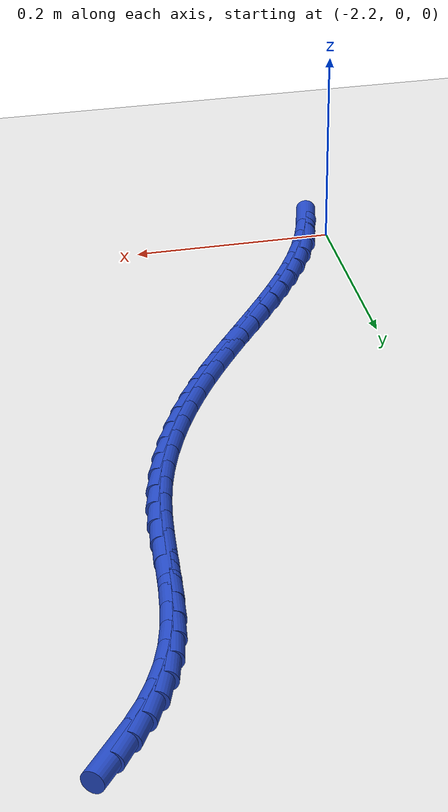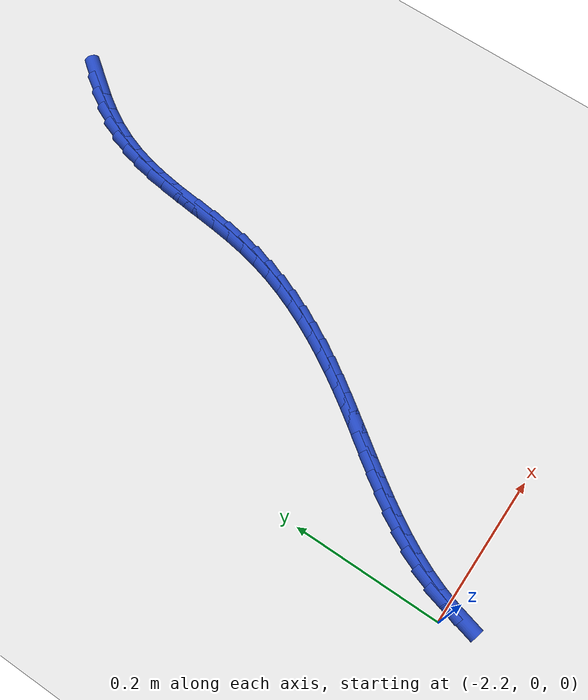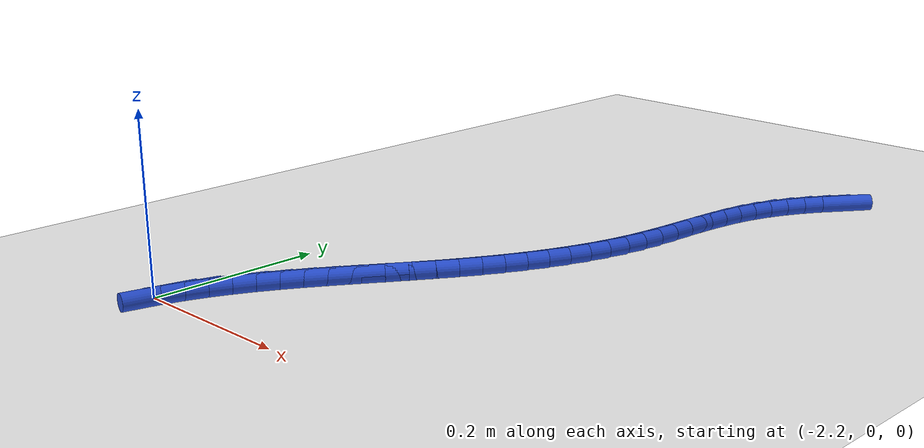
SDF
<sdf version="1.6">
 <world name="default">
  <model name="ground_plane">
   <static>1</static>
   <link name="link">
    <collision name="collision">
     <geometry><plane><normal>0 0 1</normal><size>100 100</size></plane></geometry>
     <surface><friction><ode><mu>100</mu><mu2>50</mu2></ode></friction></surface>
    </collision>
    <visual name="visual">
     <cast_shadows>0</cast_shadows>
     <geometry><plane><normal>0 0 1</normal><size>100 100</size></plane></geometry>
     <material>
      <script><uri>file://media/materials/scripts/gazebo.material</uri><name>Gazebo/WhiteGlow</name></script>
     </material>
    </visual>
   </link>
  </model>
  <model name="line">
   <link name="link_103">
    <pose>-1.8512747214582679 0.7609106441672935 0.01 0 1.57 0.9231287631363116</pose>
    <collision name="collision">
     <geometry><cylinder><radius>0.01</radius><length>0.08</length></cylinder></geometry>
    </collision>
    <visual name="visual">
     <material>
      <script><name>Gazebo/Blue</name><uri>file://media/materials/scripts/gazebo.material</uri></script>
     </material>
     <geometry><cylinder><radius>0.01</radius><length>0.08</length></cylinder></geometry>
    </visual>
   </link>
   <link name="link_104">
    <pose>-1.866297102078203 0.7410537051323601 0.01 0 1.57 0.9896168499917883</pose>
    <collision name="collision">
     <geometry><cylinder><radius>0.01</radius><length>0.08</length></cylinder></geometry>
    </collision>
    <visual name="visual">
     <material>
      <script><name>Gazebo/Blue</name><uri>file://media/materials/scripts/gazebo.material</uri></script>
     </material>
     <geometry><cylinder><radius>0.01</radius><length>0.08</length></cylinder></geometry>
    </visual>
   </link>
   <link name="link_105">
    <pose>-1.8798119530711372 0.7204786308938053 0.01 0 1.57 1.063046757856706</pose>
    <collision name="collision">
     <geometry><cylinder><radius>0.01</radius><length>0.08</length></cylinder></geometry>
    </collision>
    <visual name="visual">
     <material>
      <script><name>Gazebo/Blue</name><uri>file://media/materials/scripts/gazebo.material</uri></script>
     </material>
     <geometry><cylinder><radius>0.01</radius><length>0.08</length></cylinder></geometry>
    </visual>
   </link>
   <link name="link_106">
    <pose>-1.8916685426839133 0.6991694615609368 0.01 0 1.57 1.1433922961756122</pose>
    <collision name="collision">
     <geometry><cylinder><radius>0.01</radius><length>0.08</length></cylinder></geometry>
    </collision>
    <visual name="visual">
     <material>
      <script><name>Gazebo/Blue</name><uri>file://media/materials/scripts/gazebo.material</uri></script>
     </material>
     <geometry><cylinder><radius>0.01</radius><length>0.08</length></cylinder></geometry>
    </visual>
   </link>
   <link name="link_107">
    <pose>-1.9017161391633732 0.6771102372430629 0.01 0 1.57 1.2302144039760476</pose>
    <collision name="collision">
     <geometry><cylinder><radius>0.01</radius><length>0.08</length></cylinder></geometry>
    </collision>
    <visual name="visual">
     <material>
      <script><name>Gazebo/Blue</name><uri>file://media/materials/scripts/gazebo.material</uri></script>
     </material>
     <geometry><cylinder><radius>0.01</radius><length>0.08</length></cylinder></geometry>
    </visual>
   </link>
   <link name="link_108">
    <pose>-1.9098051081567966 0.6542853014010667 0.01 0 1.57 1.3153860328562064</pose>
    <collision name="collision">
     <geometry><cylinder><radius>0.01</radius><length>0.08</length></cylinder></geometry>
    </collision>
    <visual name="visual">
     <material>
      <script><name>Gazebo/Blue</name><uri>file://media/materials/scripts/gazebo.material</uri></script>
     </material>
     <geometry><cylinder><radius>0.01</radius><length>0.08</length></cylinder></geometry>
    </visual>
   </link>
   <link name="link_109">
    <pose>-1.9159566874657317 0.6307262312451731 0.01 0 1.57 1.3830758496814977</pose>
    <collision name="collision">
     <geometry><cylinder><radius>0.01</radius><length>0.08</length></cylinder></geometry>
    </collision>
    <visual name="visual">
     <material>
      <script><name>Gazebo/Blue</name><uri>file://media/materials/scripts/gazebo.material</uri></script>
     </material>
     <geometry><cylinder><radius>0.01</radius><length>0.08</length></cylinder></geometry>
    </visual>
   </link>
   <link name="link_110">
    <pose>-1.9205467334340895 0.6065626302755767 0.01 0 1.57 1.4316688224334688</pose>
    <collision name="collision">
     <geometry><cylinder><radius>0.01</radius><length>0.08</length></cylinder></geometry>
    </collision>
    <visual name="visual">
     <material>
      <script><name>Gazebo/Blue</name><uri>file://media/materials/scripts/gazebo.material</uri></script>
     </material>
     <geometry><cylinder><radius>0.01</radius><length>0.08</length></cylinder></geometry>
    </visual>
   </link>
   <link name="link_111">
    <pose>-1.923995212843081 0.581936295327 0.01 0 1.57 1.4619228276543006</pose>
    <collision name="collision">
     <geometry><cylinder><radius>0.01</radius><length>0.08</length></cylinder></geometry>
    </collision>
    <visual name="visual">
     <material>
      <script><name>Gazebo/Blue</name><uri>file://media/materials/scripts/gazebo.material</uri></script>
     </material>
     <geometry><cylinder><radius>0.01</radius><length>0.08</length></cylinder></geometry>
    </visual>
   </link>
   <link name="link_112">
    <pose>-1.9267220924739175 0.5569890232341667 0.01 0 1.57 1.4745726062059854</pose>
    <collision name="collision">
     <geometry><cylinder><radius>0.01</radius><length>0.08</length></cylinder></geometry>
    </collision>
    <visual name="visual">
     <material>
      <script><name>Gazebo/Blue</name><uri>file://media/materials/scripts/gazebo.material</uri></script>
     </material>
     <geometry><cylinder><radius>0.01</radius><length>0.08</length></cylinder></geometry>
    </visual>
   </link>
   <link name="link_113">
    <pose>-1.9291473391078098 0.5318626108317993 0.01 0 1.57 1.4700573816714517</pose>
    <collision name="collision">
     <geometry><cylinder><radius>0.01</radius><length>0.08</length></cylinder></geometry>
    </collision>
    <visual name="visual">
     <material>
      <script><name>Gazebo/Blue</name><uri>file://media/materials/scripts/gazebo.material</uri></script>
     </material>
     <geometry><cylinder><radius>0.01</radius><length>0.08</length></cylinder></geometry>
    </visual>
   </link>
   <link name="link_114">
    <pose>-1.9316909195259695 0.5066988549546219 0.01 0 1.57 1.4484272895212211</pose>
    <collision name="collision">
     <geometry><cylinder><radius>0.01</radius><length>0.08</length></cylinder></geometry>
    </collision>
    <visual name="visual">
     <material>
      <script><name>Gazebo/Blue</name><uri>file://media/materials/scripts/gazebo.material</uri></script>
     </material>
     <geometry><cylinder><radius>0.01</radius><length>0.08</length></cylinder></geometry>
    </visual>
   </link>
   <link name="link_115">
    <pose>-1.9347728005096076 0.4816395524373576 0.01 0 1.57 1.409389249067933</pose>
    <collision name="collision">
     <geometry><cylinder><radius>0.01</radius><length>0.08</length></cylinder></geometry>
    </collision>
    <visual name="visual">
     <material>
      <script><name>Gazebo/Blue</name><uri>file://media/materials/scripts/gazebo.material</uri></script>
     </material>
     <geometry><cylinder><radius>0.01</radius><length>0.08</length></cylinder></geometry>
    </visual>
   </link>
   <link name="link_116">
    <pose>-1.938812948839935 0.4568265001147294 0.01 0 1.57 1.3544810641204197</pose>
    <collision name="collision">
     <geometry><cylinder><radius>0.01</radius><length>0.08</length></cylinder></geometry>
    </collision>
    <visual name="visual">
     <material>
      <script><name>Gazebo/Blue</name><uri>file://media/materials/scripts/gazebo.material</uri></script>
     </material>
     <geometry><cylinder><radius>0.01</radius><length>0.08</length></cylinder></geometry>
    </visual>
   </link>
   <link name="link_117">
    <pose>-1.944183409196906 0.43238794486866244 0.01 0 1.57 1.2972614360186911</pose>
    <collision name="collision">
     <geometry><cylinder><radius>0.01</radius><length>0.08</length></cylinder></geometry>
    </collision>
    <visual name="visual">
     <material>
      <script><name>Gazebo/Blue</name><uri>file://media/materials/scripts/gazebo.material</uri></script>
     </material>
     <geometry><cylinder><radius>0.01</radius><length>0.08</length></cylinder></geometry>
    </visual>
   </link>
   <link name="link_118">
    <pose>-1.9509252749934902 0.40835855725766773 0.01 0 1.57 1.2437357232451371</pose>
    <collision name="collision">
     <geometry><cylinder><radius>0.01</radius><length>0.08</length></cylinder></geometry>
    </collision>
    <visual name="visual">
     <material>
      <script><name>Gazebo/Blue</name><uri>file://media/materials/scripts/gazebo.material</uri></script>
     </material>
     <geometry><cylinder><radius>0.01</radius><length>0.08</length></cylinder></geometry>
    </visual>
   </link>
   <link name="link_119">
    <pose>-1.9589399299855823 0.3847335049969088 0.01 0 1.57 1.1940794362898297</pose>
    <collision name="collision">
     <geometry><cylinder><radius>0.01</radius><length>0.08</length></cylinder></geometry>
    </collision>
    <visual name="visual">
     <material>
      <script><name>Gazebo/Blue</name><uri>file://media/materials/scripts/gazebo.material</uri></script>
     </material>
     <geometry><cylinder><radius>0.01</radius><length>0.08</length></cylinder></geometry>
    </visual>
   </link>
   <link name="link_120">
    <pose>-1.9681282639772943 0.3615078161369036 0.01 0 1.57 1.1483497303270647</pose>
    <collision name="collision">
     <geometry><cylinder><radius>0.01</radius><length>0.08</length></cylinder></geometry>
    </collision>
    <visual name="visual">
     <material>
      <script><name>Gazebo/Blue</name><uri>file://media/materials/scripts/gazebo.material</uri></script>
     </material>
     <geometry><cylinder><radius>0.01</radius><length>0.08</length></cylinder></geometry>
    </visual>
   </link>
   <link name="link_121">
    <pose>-1.9783911667727374 0.33867651872816945 0.01 0 1.57 1.1065278414466153</pose>
    <collision name="collision">
     <geometry><cylinder><radius>0.01</radius><length>0.08</length></cylinder></geometry>
    </collision>
    <visual name="visual">
     <material>
      <script><name>Gazebo/Blue</name><uri>file://media/materials/scripts/gazebo.material</uri></script>
     </material>
     <geometry><cylinder><radius>0.01</radius><length>0.08</length></cylinder></geometry>
    </visual>
   </link>
   <link name="link_122">
    <pose>-1.9896295281760241 0.3162346408212238 0.01 0 1.57 1.0685407402354372</pose>
    <collision name="collision">
     <geometry><cylinder><radius>0.01</radius><length>0.08</length></cylinder></geometry>
    </collision>
    <visual name="visual">
     <material>
      <script><name>Gazebo/Blue</name><uri>file://media/materials/scripts/gazebo.material</uri></script>
     </material>
     <geometry><cylinder><radius>0.01</radius><length>0.08</length></cylinder></geometry>
    </visual>
   </link>
   <link name="link_123">
    <pose>-2.0017442379912653 0.2941772104665849 0.01 0 1.57 1.0342806702012348</pose>
    <collision name="collision">
     <geometry><cylinder><radius>0.01</radius><length>0.08</length></cylinder></geometry>
    </collision>
    <visual name="visual">
     <material>
      <script><name>Gazebo/Blue</name><uri>file://media/materials/scripts/gazebo.material</uri></script>
     </material>
     <geometry><cylinder><radius>0.01</radius><length>0.08</length></cylinder></geometry>
    </visual>
   </link>
   <link name="link_124">
    <pose>-2.014636186022574 0.2724992557147701 0.01 0 1.57 1.0037899937255792</pose>
    <collision name="collision">
     <geometry><cylinder><radius>0.01</radius><length>0.08</length></cylinder></geometry>
    </collision>
    <visual name="visual">
     <material>
      <script><name>Gazebo/Blue</name><uri>file://media/materials/scripts/gazebo.material</uri></script>
     </material>
     <geometry><cylinder><radius>0.01</radius><length>0.08</length></cylinder></geometry>
    </visual>
   </link>
   <link name="link_125">
    <pose>-2.0282032071816283 0.25119268898185865 0.01 0 1.57 0.979501184121403</pose>
    <collision name="collision">
     <geometry><cylinder><radius>0.01</radius><length>0.08</length></cylinder></geometry>
    </collision>
    <visual name="visual">
     <material>
      <script><name>Gazebo/Blue</name><uri>file://media/materials/scripts/gazebo.material</uri></script>
     </material>
     <geometry><cylinder><radius>0.01</radius><length>0.08</length></cylinder></geometry>
    </visual>
   </link>
   <link name="link_126">
    <pose>-2.042296882173539 0.23020224878108103 0.01 0 1.57 0.9633193209608859</pose>
    <collision name="collision">
     <geometry><cylinder><radius>0.01</radius><length>0.08</length></cylinder></geometry>
    </collision>
    <visual name="visual">
     <material>
      <script><name>Gazebo/Blue</name><uri>file://media/materials/scripts/gazebo.material</uri></script>
     </material>
     <geometry><cylinder><radius>0.01</radius><length>0.08</length></cylinder></geometry>
    </visual>
   </link>
   <link name="link_127">
    <pose>-2.0567329048472383 0.20943607321259003 0.01 0 1.57 0.9552466254813333</pose>
    <collision name="collision">
     <geometry><cylinder><radius>0.01</radius><length>0.08</length></cylinder></geometry>
    </collision>
    <visual name="visual">
     <material>
      <script><name>Gazebo/Blue</name><uri>file://media/materials/scripts/gazebo.material</uri></script>
     </material>
     <geometry><cylinder><radius>0.01</radius><length>0.08</length></cylinder></geometry>
    </visual>
   </link>
   <link name="link_128">
    <pose>-2.0713260295816753 0.18880134222658712 0.01 0 1.57 0.9552734192095226</pose>
    <collision name="collision">
     <geometry><cylinder><radius>0.01</radius><length>0.08</length></cylinder></geometry>
    </collision>
    <visual name="visual">
     <material>
      <script><name>Gazebo/Blue</name><uri>file://media/materials/scripts/gazebo.material</uri></script>
     </material>
     <geometry><cylinder><radius>0.01</radius><length>0.08</length></cylinder></geometry>
    </visual>
   </link>
   <link name="link_129">
    <pose>-2.0858910107557995 0.16820523577327406 0.01 0 1.57 0.9634459679399631</pose>
    <collision name="collision">
     <geometry><cylinder><radius>0.01</radius><length>0.08</length></cylinder></geometry>
    </collision>
    <visual name="visual">
     <material>
      <script><name>Gazebo/Blue</name><uri>file://media/materials/scripts/gazebo.material</uri></script>
     </material>
     <geometry><cylinder><radius>0.01</radius><length>0.08</length></cylinder></geometry>
    </visual>
   </link>
   <link name="link_130">
    <pose>-2.100242602748558 0.14755493380285262 0.01 0 1.57 0.9798674554300055</pose>
    <collision name="collision">
     <geometry><cylinder><radius>0.01</radius><length>0.08</length></cylinder></geometry>
    </collision>
    <visual name="visual">
     <material>
      <script><name>Gazebo/Blue</name><uri>file://media/materials/scripts/gazebo.material</uri></script>
     </material>
     <geometry><cylinder><radius>0.01</radius><length>0.08</length></cylinder></geometry>
    </visual>
   </link>
   <link name="link_131">
    <pose>-2.1141955599389024 0.12675761626552431 0.01 0 1.57 1.0046832089921323</pose>
    <collision name="collision">
     <geometry><cylinder><radius>0.01</radius><length>0.08</length></cylinder></geometry>
    </collision>
    <visual name="visual">
     <material>
      <script><name>Gazebo/Blue</name><uri>file://media/materials/scripts/gazebo.material</uri></script>
     </material>
     <geometry><cylinder><radius>0.01</radius><length>0.08</length></cylinder></geometry>
    </visual>
   </link>
   <link name="link_132">
    <pose>-2.1275646367057788 0.10572046311149143 0.01 0 1.57 1.0380481680309248</pose>
    <collision name="collision">
     <geometry><cylinder><radius>0.01</radius><length>0.08</length></cylinder></geometry>
    </collision>
    <visual name="visual">
     <material>
      <script><name>Gazebo/Blue</name><uri>file://media/materials/scripts/gazebo.material</uri></script>
     </material>
     <geometry><cylinder><radius>0.01</radius><length>0.08</length></cylinder></geometry>
    </visual>
   </link>
   <link name="link_133">
    <pose>-2.140164587428137 0.08435065429095556 0.01 0 1.57 1.0800739108932407</pose>
    <collision name="collision">
     <geometry><cylinder><radius>0.01</radius><length>0.08</length></cylinder></geometry>
    </collision>
    <visual name="visual">
     <material>
      <script><name>Gazebo/Blue</name><uri>file://media/materials/scripts/gazebo.material</uri></script>
     </material>
     <geometry><cylinder><radius>0.01</radius><length>0.08</length></cylinder></geometry>
    </visual>
   </link>
   <link name="link_134">
    <pose>-2.151810166484927 0.06255536975411839 0.01 0 1.57 1.1307536750155072</pose>
    <collision name="collision">
     <geometry><cylinder><radius>0.01</radius><length>0.08</length></cylinder></geometry>
    </collision>
    <visual name="visual">
     <material>
      <script><name>Gazebo/Blue</name><uri>file://media/materials/scripts/gazebo.material</uri></script>
     </material>
     <geometry><cylinder><radius>0.01</radius><length>0.08</length></cylinder></geometry>
    </visual>
   </link>
   <link name="link_135">
    <pose>-2.162316128255096 0.040241789451181356 0.01 0 1.57 1.1898680841688893</pose>
    <collision name="collision">
     <geometry><cylinder><radius>0.01</radius><length>0.08</length></cylinder></geometry>
    </collision>
    <visual name="visual">
     <material>
      <script><name>Gazebo/Blue</name><uri>file://media/materials/scripts/gazebo.material</uri></script>
     </material>
     <geometry><cylinder><radius>0.01</radius><length>0.08</length></cylinder></geometry>
    </visual>
   </link>
   <link name="link_136">
    <pose>-2.1714972271175936 0.017317093332346975 0.01 0 1.57 1.2566334823869612</pose>
    <collision name="collision">
     <geometry><cylinder><radius>0.01</radius><length>0.08</length></cylinder></geometry>
    </collision>
    <visual name="visual">
     <material>
      <script><name>Gazebo/Blue</name><uri>file://media/materials/scripts/gazebo.material</uri></script>
     </material>
     <geometry><cylinder><radius>0.01</radius><length>0.08</length></cylinder></geometry>
    </visual>
   </link>
   <link name="link_137">
    <pose>-2.1791731431617927 -0.006306659417254474 0.01 0 1.57 1.3251600839558113</pose>
    <collision name="collision">
     <geometry><cylinder><radius>0.01</radius><length>0.08</length></cylinder></geometry>
    </collision>
    <visual name="visual">
     <material>
      <script><name>Gazebo/Blue</name><uri>file://media/materials/scripts/gazebo.material</uri></script>
     </material>
     <geometry><cylinder><radius>0.01</radius><length>0.08</length></cylinder></geometry>
    </visual>
   </link>
  </model>
 </world>
</sdf>
